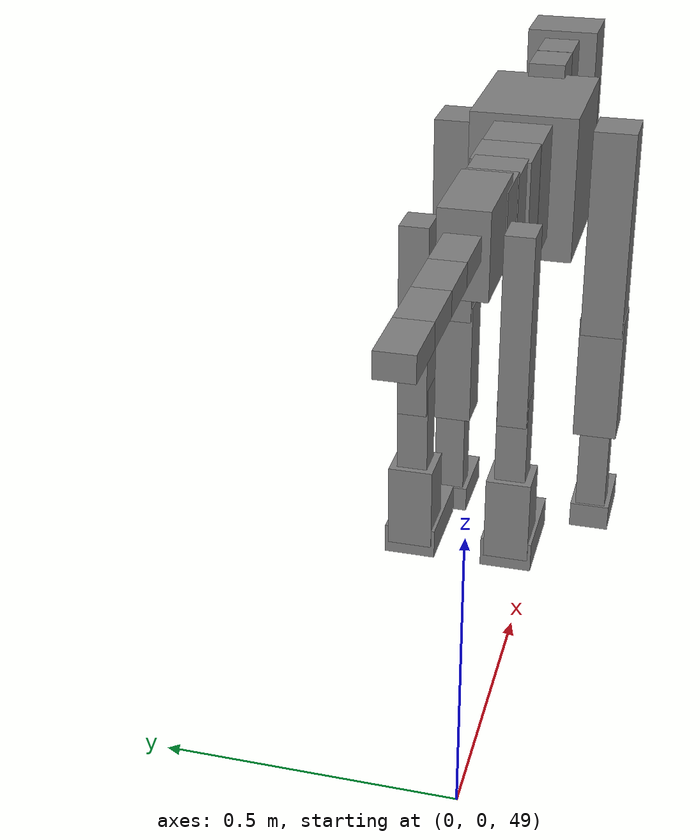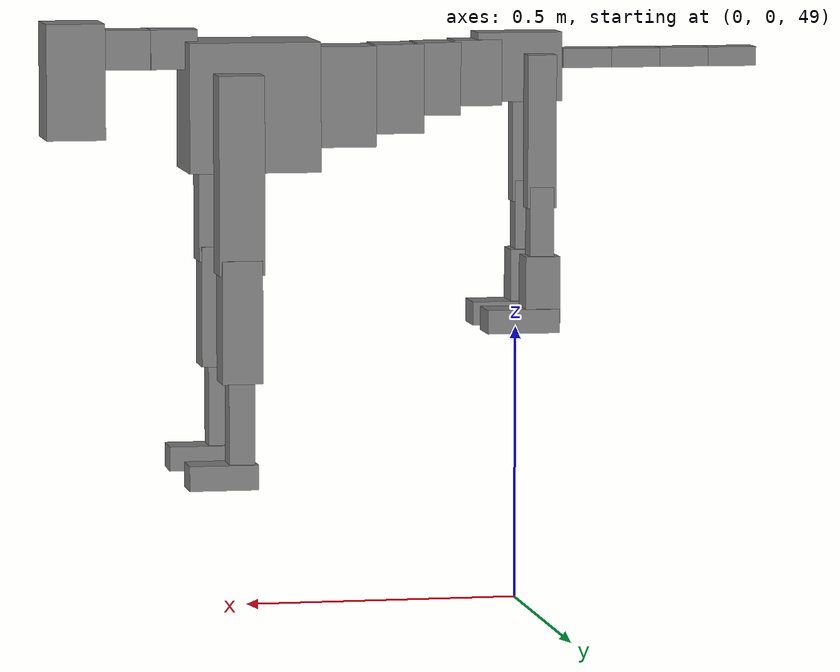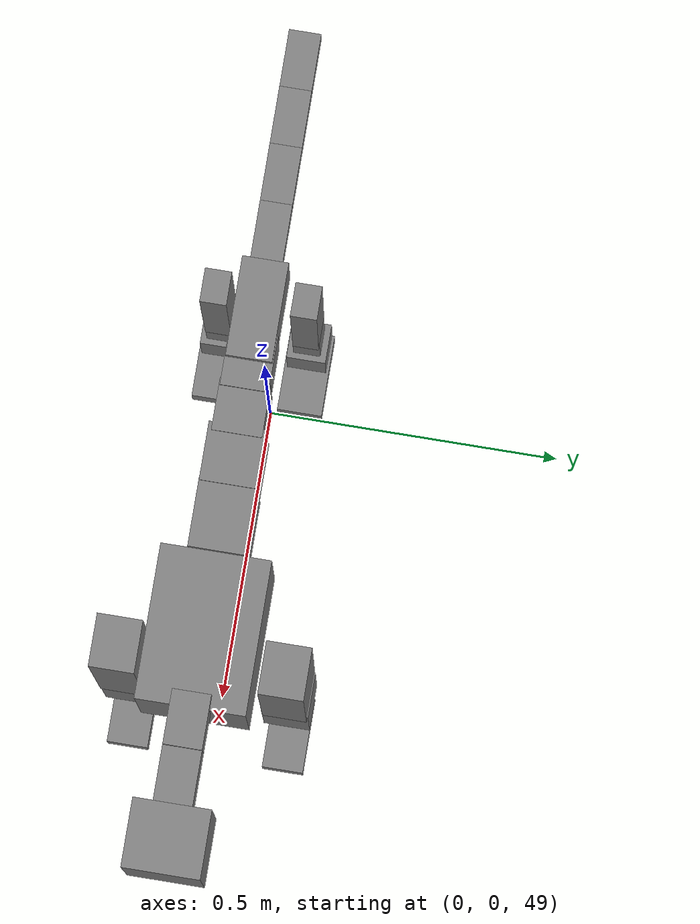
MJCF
<mujoco model="dog">

    <default>
        <joint armature="0.02" stiffness="1" damping="0.2" limited="true"/>
        <geom condim="3" friction="1 0.05 0.05" margin="0.01"/>
        <motor ctrllimited="true" ctrlrange="-1.0 1.0" forcelimited="true" gear="50"/>
    </default>

    <compiler inertiafromgeom="true" angle="radian"/>

    <option timestep="0.016" iterations="50" tolerance="1e-10" solver="Newton" jacobian="dense" cone="pyramidal"/>

    <size nconmax="20000" njmax="60000" nstack="5000000"/>
    <visual>
        <map force="0.1" zfar="30"/>
        <rgba haze="0.15 0.25 0.35 1"/>
        <quality shadowsize="2048"/>
        <global offwidth="800" offheight="800"/>
    </visual>

    <asset>
        <texture type="skybox" builtin="gradient" rgb1="0.3 0.5 0.7" rgb2="0 0 0" width="512" height="512"/>
        <texture name="texplane" type="2d" builtin="checker" rgb1=".2 .3 .4" rgb2=".1 0.15 0.2" width="512" height="512"
                 mark="cross" markrgb=".8 .8 .8"/>
        <texture name="texgeom" type="cube" builtin="flat" mark="cross" width="127" height="1278" rgb1="0.8 0.6 0.4"
                 rgb2="0.8 0.6 0.4" markrgb="1 1 1" random="0.01"/>

        <material name="matplane" reflectance="0.3" texture="texplane" texrepeat="1 1" texuniform="true"/>
        <material name="matgeom" texture="texgeom" texuniform="true" rgba="0.8 0.6 .4 1"/>
    </asset>

    <worldbody>
        <geom name="floor" pos="0 0 0" size="0 0 .25" type="plane" material="matplane" condim="3"/>

        <light directional="false" diffuse=".2 .2 .2" specular="0 0 0" pos="0 0 5" dir="0 0 -1" castshadow="false"/>
        <light mode="targetbodycom" target="torso" directional="false" diffuse=".8 .8 .8" specular="0.3 0.3 0.3"
               pos="0 0 4.0" dir="0 0 -1"/>

        <body name="root" pos="0 0 50">
            <freejoint name="root_1"/>
            <geom type="box" pos="0 0 -0.02" size="0.0774  0.0358  0.063" density="2030"/>

            <body name="spine1" pos="0.054 0 0">
                <joint name="spine1_y" axis="0 1 0" range="0 0.7" limited="true"/>
                <geom type="box" pos="0.02375 0 -0.03" size="0.04375  0.0375  0.05985" density="2030"/>

                <body name="spine2" pos="0.0612 0 0">
                    <joint name="spine2_y" axis="0 1 0" range="-0.15 0.15" limited="true"/>
                    <geom type="box" pos="0.03555  0  -0.04" size="0.04055  0.039  0.06615" density="2030"/>

                    <body name="spine3" pos="0.0730 0 0">
                        <joint name="spine3_y" axis="0 1 0" range="-0.15 0.15" limited="true"/>
                        <geom type="box" pos="0.03555  0  -0.057" size="0.04555  0.0445  0.081" density="2030"/>

                        <body name="spine4" pos="0.0780 0 0">
                            <joint name="spine4_y" axis="0 1 0" range="-0.15 0.15" limited="true"/>
                            <geom type="box" pos="0.05265  0  -0.07" size="0.05265  0.045  0.09135" density="2030"/>

                            <body name="torso" pos="0.1082 0 0">
                                <joint name="torso_y" axis="0 1 0" range="-0.15 0.15" limited="true"/>
                                <geom type="box" pos="0.11925  0  -0.085" size="0.11925  0.085  0.11745"
                                      density="2030"/>

                                <body name="neck1" pos="0.2160  0   0.0180">
                                    <joint name="neck1_y" axis="0 1 0" range="-1.2  -1" limited="true"/>
                                    <geom type="box" pos="0.0423  0  0" size="0.0423  0.03  0.036" density="2325"/>

                                    <body name="neck2" pos="0.0853  0  0">
                                        <joint name="neck2_y" axis="0 1 0" range="0.1  0" limited="true"/>
                                        <geom type="box" pos="0.0423  0  0" size="0.0423  0.03  0.036" density="2325"/>

                                        <body name="head" pos="0.0853  0  0">
                                            <joint name="head_y" axis="0 1 0" range="-0.3  -0.2" limited="true"/>
                                            <geom type="box" pos="0.0531  0  -0.055" size="0.0531  0.06  0.1044"
                                                  density="4030"/>

                                        </body>
                                    </body>
                                </body>

                                <body name="front_shoulder" pos="0.156  0   -0.0480">
                                    <joint name="front_shoulder_y" axis="0 1 0" range="-1 1.5" limited="true"/>
                                    <geom type="box" pos="0 0.13 -0.1521" size="0.0412  0.0353  0.1787" density="1158"/>
                                    <geom type="box" pos="0 -0.13 -0.1521" size="0.0412  0.0353  0.1787"
                                          density="1158"/>

                                    <body name="front_elbow" pos="0  0  -0.3041">
                                        <joint name="front_elbow_y" axis="0 1 0" range="-2 0" limited="true"/>
                                        <geom type="box" pos="0 0.13 -0.1107" size="0.0366  0.0374  0.1107"
                                              density="1081"/>
                                        <geom type="box" pos="0 -0.13 -0.1107" size="0.0366  0.0374  0.1107"
                                              density="1081"/>

                                        <body name="front_wrist" pos="0  0  -0.2213">
                                            <joint name="front_wrist_y" axis="0 1 0" range="-0.2 0" limited="true"/>
                                            <geom type="box" pos="0 0.13 -0.0807" size="0.0235  0.0261  0.0939"
                                                  density="1664"/>
                                            <geom type="box" pos="0 -0.13 -0.0807" size="0.0235  0.0261  0.0939"
                                                  density="1664"/>

                                            <body name="front_finger_end" pos="0  0  -0.1614">
                                                <joint name="front_finger_y" axis="0 1 0" range="-0.4 1"
                                                       limited="true"/>
                                                <geom type="box" pos="0.0340  0.13  -0.0076"
                                                      size="0.0624  0.0340  0.0226" density="1515"/>
                                                <geom type="box" pos="0.0340  -0.13  -0.0076"
                                                      size="0.0624  0.0340  0.0226" density="1515"/>

                                            </body>

                                        </body>
                                    </body>
                                </body>

                            </body>
                        </body>
                    </body>
                </body>
            </body>

            <body name="back_hip" pos="-0.03 0 -0.018">
                <joint name="back_hip_y" axis="0 1 0" range="-1.5 0.3" limited="true"/>
                <geom type="box" pos="0 0.07 -0.1163" size="0.0264  0.0207  0.1391" density="1154"/>
                <geom type="box" pos="0 -0.07 -0.1163" size="0.0264  0.0207  0.1391" density="1154"/>

                <body name="back_knee" pos="0  0  -0.2327">
                    <joint name="back_knee_y" axis="0 1 0" range="0 2.8" limited="true"/>
                    <geom type="box" pos="0 0.07 -0.0607" size="0.0220  0.0217  0.0762" density="1227"/>
                    <geom type="box" pos="0 -0.07 -0.0607" size="0.0220  0.0217  0.0762" density="1227"/>

                    <body name="back_ankle" pos="0  0  -0.1214">
                        <joint name="back_ankle_y" axis="0 1 0" range="-2.2 0" limited="true"/>
                        <geom type="box" pos="0 0.07 -0.0495" size="0.0315  0.0315  0.0608" density="1284"/>
                        <geom type="box" pos="0 -0.07 -0.0495" size="0.0315  0.0315  0.0608" density="1284"/>

                        <body name="back_toe_end" pos="0  0  -0.0990">
                            <joint name="back_toe_y" axis="0 1 0" range="-0.4 1" limited="true"/>
                            <geom type="box" pos="0.0362  0.07  -0.0067" size="0.0664  0.0362  0.0217" density="1515"/>
                            <geom type="box" pos="0.0362  -0.07  -0.0067" size="0.0664  0.0362  0.0217" density="1515"/>

                        </body>
                    </body>
                </body>
            </body>

            <body name="tail1" pos="-0.074 0 -0.006">
                <joint name="tail1_y" axis="0 1 0" range="-0.2 0.2" limited="true"/>
                <geom type="box" pos="-0.0536  0  0" size="0.045  0.025  0.0175" density="1587"/>

                <body name="tail2" pos="-0.09 0 0">
                    <joint name="tail2_y" axis="0 1 0" range="-0.2 0.2" limited="true"/>
                    <geom type="box" pos="-0.0536  0  0" size="0.045  0.025  0.0175" density="1587"/>

                    <body name="tail3" pos="-0.09 0 0">
                        <joint name="tail3_y" axis="0 1 0" range="-0.2 0.2" limited="true"/>
                        <geom type="box" pos="-0.0536  0  0" size="0.045  0.025  0.0175" density="1587"/>

                        <body name="tail4" pos="-0.09 0 0">
                            <joint name="tail4_y" axis="0 1 0" range="-0.2 0.2" limited="true"/>
                            <geom type="box" pos="-0.0536  0  0" size="0.045  0.025  0.0175" density="1587"/>

                        </body>
                    </body>
                </body>
            </body>
        </body>
    </worldbody>

    <actuator>
        <motor joint="spine1_y" forcerange="-150 150     "/>
        <motor joint="spine2_y" forcerange="-150 150     "/>
        <motor joint="spine3_y" forcerange="-150 150     "/>
        <motor joint="spine4_y" forcerange="-150 150     "/>
        <motor joint="torso_y" forcerange="-150 150     "/>
        <motor joint="neck1_y" forcerange="-100 100       "/>
        <motor joint="neck2_y" forcerange="-100 100       "/>
        <motor joint="head_y" forcerange="-150 150       "/>
        <motor joint="front_shoulder_y" forcerange="-161.31 173.73"/>
        <motor joint="front_elbow_y" forcerange="-181.82 190.43"/>
        <motor joint="front_wrist_y" forcerange="-133.10 75.38"/>
        <motor joint="front_finger_y" forcerange="-50.17 91.38"/>
        <motor joint="back_hip_y" forcerange="-265.52 210.41"/>
        <motor joint="back_knee_y" forcerange="-248.57 267.14"/>
        <motor joint="back_angle_y" forcerange="-175.14 229.07"/>
        <motor joint="back_toe_y" forcerange="-126.89 82.67"/>
        <motor joint="tail1_y" forcerange="-50 50     "/>
        <motor joint="tail2_y" forcerange="-50 50     "/>
        <motor joint="tail3_y" forcerange="-50 50     "/>
        <motor joint="tail4_y" forcerange="-50 50     "/>
    </actuator>
</mujoco>
